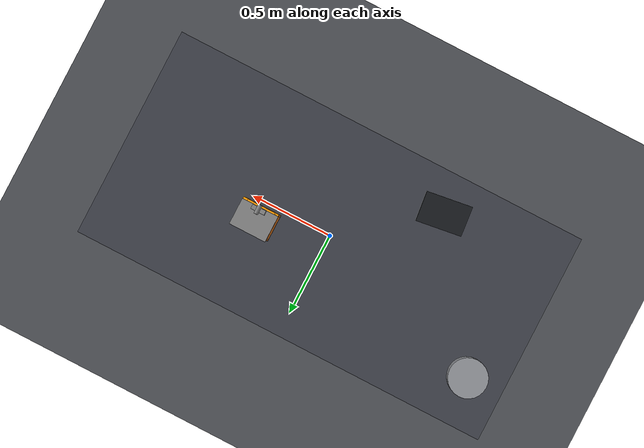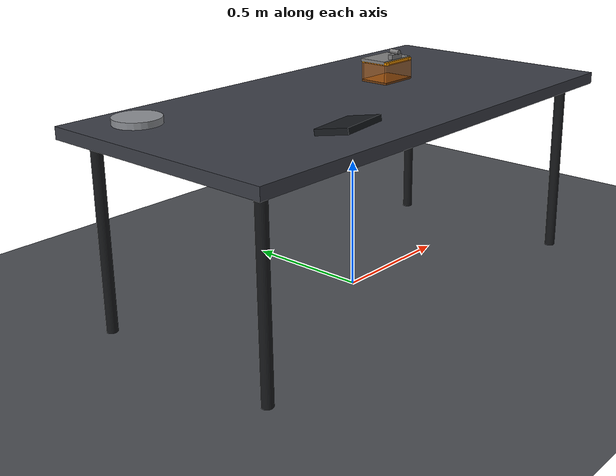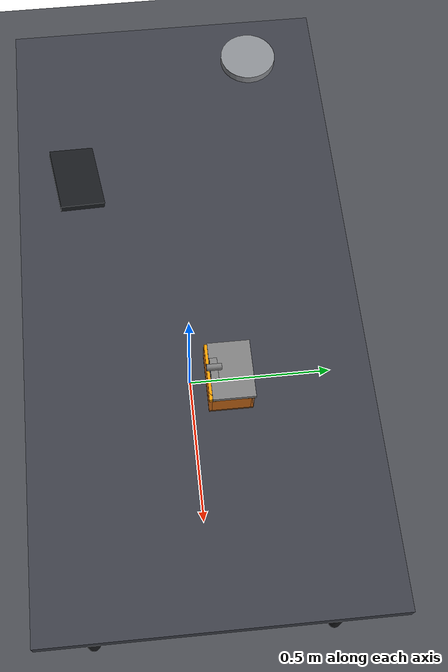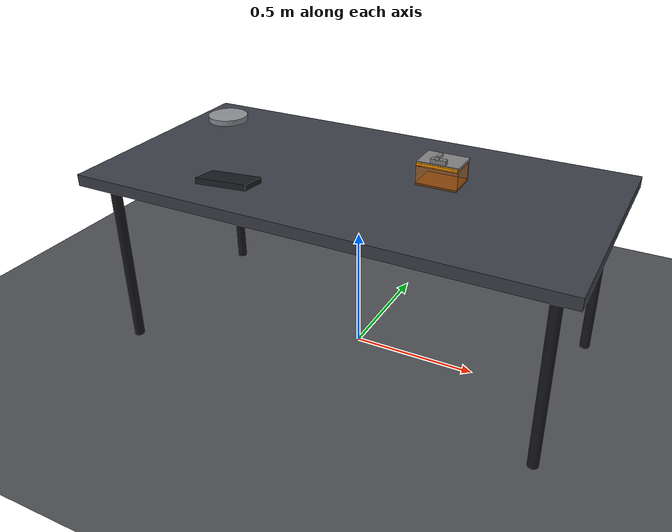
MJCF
<mujoco model="panda_lid_open_tabletop"><compiler angle="radian" autolimits="true" /><option timestep="0.002" gravity="0 0 -9.81" /><statistic center="0.1 0 0.55" meansize="0.04" extent="2.66" /><visual><headlight ambient="0.45 0.45 0.5" diffuse="0.65 0.65 0.7" specular="0.15 0.15 0.15" /></visual><asset><texture name="lab_table_tex" type="2d" builtin="checker" rgb1="0.17 0.18 0.21" rgb2="0.30 0.31 0.35" width="640" height="640" /><material name="lab_table_mat" texture="lab_table_tex" texrepeat="18 10" specular="0.5" shininess="0.4" reflectance="0.08" /><texture name="floor_tex" type="2d" builtin="checker" rgb1="0.26 0.27 0.29" rgb2="0.33 0.34 0.36" width="512" height="512" /><material name="floor_mat" texture="floor_tex" texrepeat="6 6" reflectance="0.12" shininess="0.4" /></asset><worldbody><light name="key_light" pos="1.7 -0.7 2.5" dir="-0.5 0.28 -0.85" directional="true" diffuse="1.0 1.0 1.0" specular="0.2 0.2 0.2" castshadow="true" /><light name="front_fill" pos="0.4 1.4 2.2" dir="-0.02 -0.38 -0.9" directional="true" diffuse="0.38 0.38 0.42" /><light name="fill_light" pos="-1.5 -1.0 1.8" dir="0.5 0.4 -0.7" directional="true" diffuse="0.22 0.22 0.25" /><geom name="room_floor" type="plane" size="5 5 0.05" pos="0 0 0.0" material="floor_mat" /><geom name="table_top" type="box" pos="0 0 0.7275" size="0.95 0.475 0.0225" material="lab_table_mat" friction="0.6 0.008 0.0002" /><geom name="table_leg_0" type="cylinder" pos="-0.86 -0.385 0.3525" size="0.021 0.3525" rgba="0.09 0.095 0.105 1" /><geom name="table_leg_1" type="cylinder" pos="0.86 -0.385 0.3525" size="0.021 0.3525" rgba="0.09 0.095 0.105 1" /><geom name="table_leg_2" type="cylinder" pos="-0.86 0.385 0.3525" size="0.021 0.3525" rgba="0.09 0.095 0.105 1" /><geom name="table_leg_3" type="cylinder" pos="0.86 0.385 0.3525" size="0.021 0.3525" rgba="0.09 0.095 0.105 1" /><geom name="Control_Panel_Deck" pos="-0.38 -0.3 0.772" type="box" size="0.1 0.065 0.011" quat="0.99377 -0.086927 -0.006077 0.069478" rgba="0.1 0.11 0.125 1" group="1" /><geom name="Desk_Lamp_Base" pos="-0.78 0.26 0.774" type="cylinder" size="0.085 0.012" rgba="0.55 0.56 0.58 1" group="1" /><body name="LidBox" pos="0.3 0.08 0.75"><geom name="box_front" type="box" pos="0 -0.056 0.043" size="0.08 0.004 0.035" rgba="0.85 0.45 0.1 0.55" group="1" /><geom name="box_back" type="box" pos="0 0.056 0.043" size="0.08 0.004 0.035" rgba="0.85 0.45 0.1 0.55" group="1" /><geom name="box_left" type="box" pos="-0.076 0 0.043" size="0.004 0.052 0.035" rgba="0.85 0.45 0.1 0.55" group="1" /><geom name="box_right" type="box" pos="0.076 0 0.043" size="0.004 0.052 0.035" rgba="0.85 0.45 0.1 0.55" group="1" /><geom name="box_bottom" type="box" pos="0 0 0.004" size="0.08 0.06 0.004" rgba="0.45 0.24 0.06 1" group="1" friction="0.7 0.01 0.0005" /></body><geom name="box_rim_Front" type="box" pos="0.3 0.03 0.83" size="0.08 0.009 0.006" rgba="1 0.62 0 1" contype="0" conaffinity="0" group="2" /><geom name="box_rim_Back" type="box" pos="0.3 0.13 0.83" size="0.08 0.009 0.006" rgba="1 0.62 0 1" contype="0" conaffinity="0" group="2" /><geom name="box_rim_Left" type="box" pos="0.23 0.08 0.83" size="0.009 0.06 0.006" rgba="1 0.62 0 1" contype="0" conaffinity="0" group="2" /><geom name="box_rim_Right" type="box" pos="0.37 0.08 0.83" size="0.009 0.06 0.006" rgba="1 0.62 0 1" contype="0" conaffinity="0" group="2" /><body name="Lid" pos="0.3 0.142 0.834"><joint name="lid_hinge" type="hinge" axis="1 0 0" range="-2.1 0" damping="0.020000" /><geom name="lid_panel" type="box" pos="0 -0.0555 0" size="0.081 0.0575 0.006" mass="0.100000" friction="0.600 0.0100 0.000500" /><geom name="lid_panel_vis" type="box" pos="0 -0.0555 0" size="0.081 0.0575 0.006" rgba="0.88 0.89 0.92 1" group="1" contype="0" conaffinity="0" /><geom name="lid_handle_bracket" type="box" pos="0 -0.102 0.015" size="0.03 0.01 0.009" mass="0.012000" friction="1.000 0.0100 0.000500" /><geom name="lid_handle_bracket_vis" type="box" pos="0 -0.102 0.015" size="0.03 0.01 0.009" rgba="0.13 0.14 0.16 1" group="1" contype="0" conaffinity="0" /><geom name="lid_handle_bar" type="cylinder" pos="0 -0.102 0.033" size="0.009 0.02" mass="0.018000" quat="0.707107 0.707107 0 0" friction="2.000 0.0100 0.000500" /><geom name="lid_handle_bar_vis" type="cylinder" pos="0 -0.102 0.033" size="0.009 0.02" rgba="0.13 0.14 0.16 1" group="1" contype="0" conaffinity="0" quat="0.707107 0.707107 0 0" /></body><camera name="agentview" pos="0.31 0.46 1.3" xyaxes="-0.997199 0.07479 0 -0.059218 -0.789579 0.610785" fovy="45" /><camera name="sideview" pos="1.15 -0.32 1.12" xyaxes="0.417733 0.90857 0 -0.287977 0.132403 0.94844" fovy="40" /></worldbody><actuator /></mujoco>
